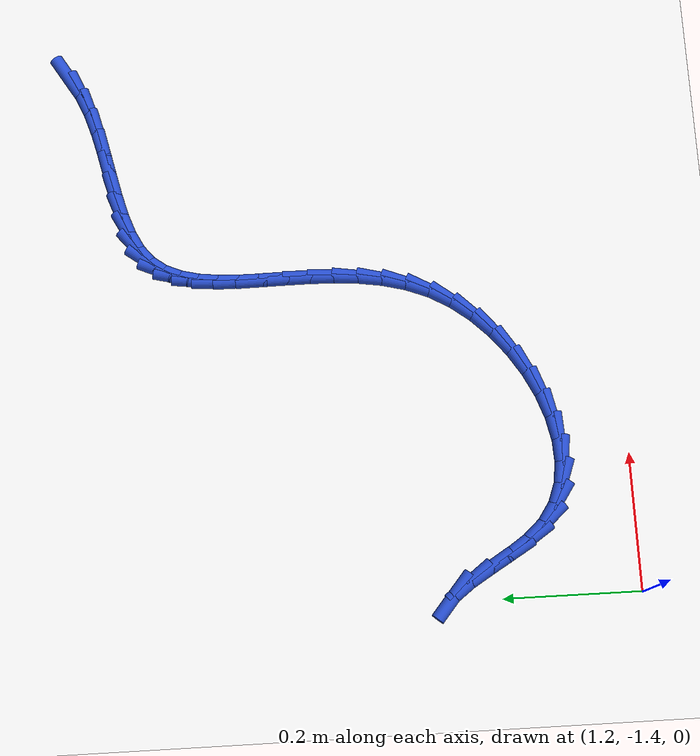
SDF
<sdf version="1.6">
 <world name="default">
  <model name="ground_plane">
   <static>1</static>
   <link name="link">
    <collision name="collision">
     <geometry><plane><normal>0 0 1</normal><size>100 100</size></plane></geometry>
     <surface><friction><ode><mu>100</mu><mu2>50</mu2></ode></friction></surface>
    </collision>
    <visual name="visual">
     <cast_shadows>0</cast_shadows>
     <geometry><plane><normal>0 0 1</normal><size>100 100</size></plane></geometry>
     <material>
      <script><uri>file://media/materials/scripts/gazebo.material</uri><name>Gazebo/WhiteGlow</name></script>
     </material>
    </visual>
   </link>
  </model>
  <model name="line">
   <link name="link_139">
    <pose>2.0204801370603924 -0.6027945578658397 0.01 0 1.57 0.5506249792287402</pose>
    <collision name="collision">
     <geometry><cylinder><radius>0.01</radius><length>0.08</length></cylinder></geometry>
    </collision>
    <visual name="visual">
     <material>
      <script><name>Gazebo/Blue</name><uri>file://media/materials/scripts/gazebo.material</uri></script>
     </material>
     <geometry><cylinder><radius>0.01</radius><length>0.08</length></cylinder></geometry>
    </visual>
   </link>
   <link name="link_140">
    <pose>1.9933408639157826 -0.6194571339336502 0.01 0 1.57 0.4077835670986405</pose>
    <collision name="collision">
     <geometry><cylinder><radius>0.01</radius><length>0.08</length></cylinder></geometry>
    </collision>
    <visual name="visual">
     <material>
      <script><name>Gazebo/Blue</name><uri>file://media/materials/scripts/gazebo.material</uri></script>
     </material>
     <geometry><cylinder><radius>0.01</radius><length>0.08</length></cylinder></geometry>
    </visual>
   </link>
   <link name="link_141">
    <pose>1.9628852519287945 -0.6326139159719442 0.01 0 1.57 0.31090474929550577</pose>
    <collision name="collision">
     <geometry><cylinder><radius>0.01</radius><length>0.08</length></cylinder></geometry>
    </collision>
    <visual name="visual">
     <material>
      <script><name>Gazebo/Blue</name><uri>file://media/materials/scripts/gazebo.material</uri></script>
     </material>
     <geometry><cylinder><radius>0.01</radius><length>0.08</length></cylinder></geometry>
    </visual>
   </link>
   <link name="link_142">
    <pose>1.9301421705893012 -0.643135099022754 0.01 0 1.57 0.2520344838059084</pose>
    <collision name="collision">
     <geometry><cylinder><radius>0.01</radius><length>0.08</length></cylinder></geometry>
    </collision>
    <visual name="visual">
     <material>
      <script><name>Gazebo/Blue</name><uri>file://media/materials/scripts/gazebo.material</uri></script>
     </material>
     <geometry><cylinder><radius>0.01</radius><length>0.08</length></cylinder></geometry>
    </visual>
   </link>
   <link name="link_143">
    <pose>1.8961404893871774 -0.6518908781281112 0.01 0 1.57 0.22571725895517175</pose>
    <collision name="collision">
     <geometry><cylinder><radius>0.01</radius><length>0.08</length></cylinder></geometry>
    </collision>
    <visual name="visual">
     <material>
      <script><name>Gazebo/Blue</name><uri>file://media/materials/scripts/gazebo.material</uri></script>
     </material>
     <geometry><cylinder><radius>0.01</radius><length>0.08</length></cylinder></geometry>
    </visual>
   </link>
   <link name="link_144">
    <pose>1.861909077812298 -0.6597514483300478 0.01 0 1.57 0.2302158299332476</pose>
    <collision name="collision">
     <geometry><cylinder><radius>0.01</radius><length>0.08</length></cylinder></geometry>
    </collision>
    <visual name="visual">
     <material>
      <script><name>Gazebo/Blue</name><uri>file://media/materials/scripts/gazebo.material</uri></script>
     </material>
     <geometry><cylinder><radius>0.01</radius><length>0.08</length></cylinder></geometry>
    </visual>
   </link>
   <link name="link_145">
    <pose>1.8284768053545357 -0.6675870046705954 0.01 0 1.57 0.2680592209914798</pose>
    <collision name="collision">
     <geometry><cylinder><radius>0.01</radius><length>0.08</length></cylinder></geometry>
    </collision>
    <visual name="visual">
     <material>
      <script><name>Gazebo/Blue</name><uri>file://media/materials/scripts/gazebo.material</uri></script>
     </material>
     <geometry><cylinder><radius>0.01</radius><length>0.08</length></cylinder></geometry>
    </visual>
   </link>
   <link name="link_146">
    <pose>1.7968725415037654 -0.6762677421917854 0.01 0 1.57 0.3470038680184652</pose>
    <collision name="collision">
     <geometry><cylinder><radius>0.01</radius><length>0.08</length></cylinder></geometry>
    </collision>
    <visual name="visual">
     <material>
      <script><name>Gazebo/Blue</name><uri>file://media/materials/scripts/gazebo.material</uri></script>
     </material>
     <geometry><cylinder><radius>0.01</radius><length>0.08</length></cylinder></geometry>
    </visual>
   </link>
   <link name="link_147">
    <pose>1.7681251557498618 -0.6866638559356508 0.01 0 1.57 0.4812158918958892</pose>
    <collision name="collision">
     <geometry><cylinder><radius>0.01</radius><length>0.08</length></cylinder></geometry>
    </collision>
    <visual name="visual">
     <material>
      <script><name>Gazebo/Blue</name><uri>file://media/materials/scripts/gazebo.material</uri></script>
     </material>
     <geometry><cylinder><radius>0.01</radius><length>0.08</length></cylinder></geometry>
    </visual>
   </link>
   <link name="link_148">
    <pose>1.7432635175826983 -0.6996455409442218 0.01 0 1.57 0.6887281016527006</pose>
    <collision name="collision">
     <geometry><cylinder><radius>0.01</radius><length>0.08</length></cylinder></geometry>
    </collision>
    <visual name="visual">
     <material>
      <script><name>Gazebo/Blue</name><uri>file://media/materials/scripts/gazebo.material</uri></script>
     </material>
     <geometry><cylinder><radius>0.01</radius><length>0.08</length></cylinder></geometry>
    </visual>
   </link>
   <link name="link_149">
    <pose>1.723305361294164 -0.7160750963336787 0.01 0 1.57 0.9427282363076843</pose>
    <collision name="collision">
     <geometry><cylinder><radius>0.01</radius><length>0.08</length></cylinder></geometry>
    </collision>
    <visual name="visual">
     <material>
      <script><name>Gazebo/Blue</name><uri>file://media/materials/scripts/gazebo.material</uri></script>
     </material>
     <geometry><cylinder><radius>0.01</radius><length>0.08</length></cylinder></geometry>
    </visual>
   </link>
   <link name="link_150">
    <pose>1.7085928610588677 -0.736335784152218 0.01 0 1.57 1.1656803235499935</pose>
    <collision name="collision">
     <geometry><cylinder><radius>0.01</radius><length>0.08</length></cylinder></geometry>
    </collision>
    <visual name="visual">
     <material>
      <script><name>Gazebo/Blue</name><uri>file://media/materials/scripts/gazebo.material</uri></script>
     </material>
     <geometry><cylinder><radius>0.01</radius><length>0.08</length></cylinder></geometry>
    </visual>
   </link>
   <link name="link_151">
    <pose>1.6984167675291186 -0.7600653060923415 0.01 0 1.57 1.334731851967735</pose>
    <collision name="collision">
     <geometry><cylinder><radius>0.01</radius><length>0.08</length></cylinder></geometry>
    </collision>
    <visual name="visual">
     <material>
      <script><name>Gazebo/Blue</name><uri>file://media/materials/scripts/gazebo.material</uri></script>
     </material>
     <geometry><cylinder><radius>0.01</radius><length>0.08</length></cylinder></geometry>
    </visual>
   </link>
   <link name="link_152">
    <pose>1.691976881249246 -0.7868368714765234 0.01 0 1.57 1.4521235813278817</pose>
    <collision name="collision">
     <geometry><cylinder><radius>0.01</radius><length>0.08</length></cylinder></geometry>
    </collision>
    <visual name="visual">
     <material>
      <script><name>Gazebo/Blue</name><uri>file://media/materials/scripts/gazebo.material</uri></script>
     </material>
     <geometry><cylinder><radius>0.01</radius><length>0.08</length></cylinder></geometry>
    </visual>
   </link>
   <link name="link_153">
    <pose>1.688473002763579 -0.8162236896272376 0.01 0 1.57 1.527496155603274</pose>
    <collision name="collision">
     <geometry><cylinder><radius>0.01</radius><length>0.08</length></cylinder></geometry>
    </collision>
    <visual name="visual">
     <material>
      <script><name>Gazebo/Blue</name><uri>file://media/materials/scripts/gazebo.material</uri></script>
     </material>
     <geometry><cylinder><radius>0.01</radius><length>0.08</length></cylinder></geometry>
    </visual>
   </link>
   <link name="link_154">
    <pose>1.687104932616447 -0.8477989698669588 0.01 0 1.57 1.5698225948727833</pose>
    <collision name="collision">
     <geometry><cylinder><radius>0.01</radius><length>0.08</length></cylinder></geometry>
    </collision>
    <visual name="visual">
     <material>
      <script><name>Gazebo/Blue</name><uri>file://media/materials/scripts/gazebo.material</uri></script>
     </material>
     <geometry><cylinder><radius>0.01</radius><length>0.08</length></cylinder></geometry>
    </visual>
   </link>
   <link name="link_155">
    <pose>1.6870724713521787 -0.8811359215181616 0.01 0 1.57 -1.556291385592711</pose>
    <collision name="collision">
     <geometry><cylinder><radius>0.01</radius><length>0.08</length></cylinder></geometry>
    </collision>
    <visual name="visual">
     <material>
      <script><name>Gazebo/Blue</name><uri>file://media/materials/scripts/gazebo.material</uri></script>
     </material>
     <geometry><cylinder><radius>0.01</radius><length>0.08</length></cylinder></geometry>
    </visual>
   </link>
   <link name="link_156">
    <pose>1.6875754195151034 -0.9158077539033183 0.01 0 1.57 -1.5641028164847528</pose>
    <collision name="collision">
     <geometry><cylinder><radius>0.01</radius><length>0.08</length></cylinder></geometry>
    </collision>
    <visual name="visual">
     <material>
      <script><name>Gazebo/Blue</name><uri>file://media/materials/scripts/gazebo.material</uri></script>
     </material>
     <geometry><cylinder><radius>0.01</radius><length>0.08</length></cylinder></geometry>
    </visual>
   </link>
   <link name="link_157">
    <pose>1.6878135776495502 -0.951387676344904 0.01 0 1.57 1.5478717984447465</pose>
    <collision name="collision">
     <geometry><cylinder><radius>0.01</radius><length>0.08</length></cylinder></geometry>
    </collision>
    <visual name="visual">
     <material>
      <script><name>Gazebo/Blue</name><uri>file://media/materials/scripts/gazebo.material</uri></script>
     </material>
     <geometry><cylinder><radius>0.01</radius><length>0.08</length></cylinder></geometry>
    </visual>
   </link>
   <link name="link_158">
    <pose>1.6869867462998482 -0.9874488981653933 0.01 0 1.57 1.496395195622433</pose>
    <collision name="collision">
     <geometry><cylinder><radius>0.01</radius><length>0.08</length></cylinder></geometry>
    </collision>
    <visual name="visual">
     <material>
      <script><name>Gazebo/Blue</name><uri>file://media/materials/scripts/gazebo.material</uri></script>
     </material>
     <geometry><cylinder><radius>0.01</radius><length>0.08</length></cylinder></geometry>
    </visual>
   </link>
   <link name="link_159">
    <pose>1.6842947260103271 -1.02356462868726 0.01 0 1.57 1.4220187985385835</pose>
    <collision name="collision">
     <geometry><cylinder><radius>0.01</radius><length>0.08</length></cylinder></geometry>
    </collision>
    <visual name="visual">
     <material>
      <script><name>Gazebo/Blue</name><uri>file://media/materials/scripts/gazebo.material</uri></script>
     </material>
     <geometry><cylinder><radius>0.01</radius><length>0.08</length></cylinder></geometry>
    </visual>
   </link>
   <link name="link_160">
    <pose>1.6789373173253157 -1.059308077232978 0.01 0 1.57 1.323478441267245</pose>
    <collision name="collision">
     <geometry><cylinder><radius>0.01</radius><length>0.08</length></cylinder></geometry>
    </collision>
    <visual name="visual">
     <material>
      <script><name>Gazebo/Blue</name><uri>file://media/materials/scripts/gazebo.material</uri></script>
     </material>
     <geometry><cylinder><radius>0.01</radius><length>0.08</length></cylinder></geometry>
    </visual>
   </link>
   <link name="link_161">
    <pose>1.6701143207891425 -1.0942524531250217 0.01 0 1.57 1.2005227114284338</pose>
    <collision name="collision">
     <geometry><cylinder><radius>0.01</radius><length>0.08</length></cylinder></geometry>
    </collision>
    <visual name="visual">
     <material>
      <script><name>Gazebo/Blue</name><uri>file://media/materials/scripts/gazebo.material</uri></script>
     </material>
     <geometry><cylinder><radius>0.01</radius><length>0.08</length></cylinder></geometry>
    </visual>
   </link>
   <link name="link_162">
    <pose>1.6570255369461369 -1.1279709656858659 0.01 0 1.57 1.0575467888120178</pose>
    <collision name="collision">
     <geometry><cylinder><radius>0.01</radius><length>0.08</length></cylinder></geometry>
    </collision>
    <visual name="visual">
     <material>
      <script><name>Gazebo/Blue</name><uri>file://media/materials/scripts/gazebo.material</uri></script>
     </material>
     <geometry><cylinder><radius>0.01</radius><length>0.08</length></cylinder></geometry>
    </visual>
   </link>
   <link name="link_163">
    <pose>1.6389537400628382 -1.160034036125063 0.01 0 1.57 0.9192393414856682</pose>
    <collision name="collision">
     <geometry><cylinder><radius>0.01</radius><length>0.08</length></cylinder></geometry>
    </collision>
    <visual name="visual">
     <material>
      <script><name>Gazebo/Blue</name><uri>file://media/materials/scripts/gazebo.material</uri></script>
     </material>
     <geometry><cylinder><radius>0.01</radius><length>0.08</length></cylinder></geometry>
    </visual>
   </link>
   <link name="link_164">
    <pose>1.6161144620849357 -1.1899807427924374 0.01 0 1.57 0.7954705822676417</pose>
    <collision name="collision">
     <geometry><cylinder><radius>0.01</radius><length>0.08</length></cylinder></geometry>
    </collision>
    <visual name="visual">
     <material>
      <script><name>Gazebo/Blue</name><uri>file://media/materials/scripts/gazebo.material</uri></script>
     </material>
     <geometry><cylinder><radius>0.01</radius><length>0.08</length></cylinder></geometry>
    </visual>
   </link>
   <link name="link_165">
    <pose>1.5893102451115273 -1.2173304391110598 0.01 0 1.57 0.6809333635459103</pose>
    <collision name="collision">
     <geometry><cylinder><radius>0.01</radius><length>0.08</length></cylinder></geometry>
    </collision>
    <visual name="visual">
     <material>
      <script><name>Gazebo/Blue</name><uri>file://media/materials/scripts/gazebo.material</uri></script>
     </material>
     <geometry><cylinder><radius>0.01</radius><length>0.08</length></cylinder></geometry>
    </visual>
   </link>
   <link name="link_166">
    <pose>1.5593527721094402 -1.2416021713492693 0.01 0 1.57 0.5702225250688776</pose>
    <collision name="collision">
     <geometry><cylinder><radius>0.01</radius><length>0.08</length></cylinder></geometry>
    </collision>
    <visual name="visual">
     <material>
      <script><name>Gazebo/Blue</name><uri>file://media/materials/scripts/gazebo.material</uri></script>
     </material>
     <geometry><cylinder><radius>0.01</radius><length>0.08</length></cylinder></geometry>
    </visual>
   </link>
   <link name="link_167">
    <pose>1.5270537260455024 -1.2623149857754048 0.01 0 1.57 0.45791963032442634</pose>
    <collision name="collision">
     <geometry><cylinder><radius>0.01</radius><length>0.08</length></cylinder></geometry>
    </collision>
    <visual name="visual">
     <material>
      <script><name>Gazebo/Blue</name><uri>file://media/materials/scripts/gazebo.material</uri></script>
     </material>
     <geometry><cylinder><radius>0.01</radius><length>0.08</length></cylinder></geometry>
    </visual>
   </link>
   <link name="link_168">
    <pose>1.4932247898865407 -1.2789879286578056 0.01 0 1.57 0.3382371082156065</pose>
    <collision name="collision">
     <geometry><cylinder><radius>0.01</radius><length>0.08</length></cylinder></geometry>
    </collision>
    <visual name="visual">
     <material>
      <script><name>Gazebo/Blue</name><uri>file://media/materials/scripts/gazebo.material</uri></script>
     </material>
     <geometry><cylinder><radius>0.01</radius><length>0.08</length></cylinder></geometry>
    </visual>
   </link>
   <link name="link_169">
    <pose>1.4586776465993825 -1.2911400462648102 0.01 0 1.57 0.2046300514641792</pose>
    <collision name="collision">
     <geometry><cylinder><radius>0.01</radius><length>0.08</length></cylinder></geometry>
    </collision>
    <visual name="visual">
     <material>
      <script><name>Gazebo/Blue</name><uri>file://media/materials/scripts/gazebo.material</uri></script>
     </material>
     <geometry><cylinder><radius>0.01</radius><length>0.08</length></cylinder></geometry>
    </visual>
   </link>
   <link name="link_170">
    <pose>1.4242239791508533 -1.2982903848647576 0.01 0 1.57 0.04966642369909856</pose>
    <collision name="collision">
     <geometry><cylinder><radius>0.01</radius><length>0.08</length></cylinder></geometry>
    </collision>
    <visual name="visual">
     <material>
      <script><name>Gazebo/Blue</name><uri>file://media/materials/scripts/gazebo.material</uri></script>
     </material>
     <geometry><cylinder><radius>0.01</radius><length>0.08</length></cylinder></geometry>
    </visual>
   </link>
   <link name="link_171">
    <pose>1.3906754705077833 -1.2999579907259873 0.01 0 1.57 -0.1341518764235065</pose>
    <collision name="collision">
     <geometry><cylinder><radius>0.01</radius><length>0.08</length></cylinder></geometry>
    </collision>
    <visual name="visual">
     <material>
      <script><name>Gazebo/Blue</name><uri>file://media/materials/scripts/gazebo.material</uri></script>
     </material>
     <geometry><cylinder><radius>0.01</radius><length>0.08</length></cylinder></geometry>
    </visual>
   </link>
   <link name="link_172">
    <pose>1.358843803636998 -1.2956619101168376 0.01 0 1.57 -0.3513315425656951</pose>
    <collision name="collision">
     <geometry><cylinder><radius>0.01</radius><length>0.08</length></cylinder></geometry>
    </collision>
    <visual name="visual">
     <material>
      <script><name>Gazebo/Blue</name><uri>file://media/materials/scripts/gazebo.material</uri></script>
     </material>
     <geometry><cylinder><radius>0.01</radius><length>0.08</length></cylinder></geometry>
    </visual>
   </link>
   <link name="link_173">
    <pose>1.329540661505325 -1.284921189305648 0.01 0 1.57 -0.5974748276260154</pose>
    <collision name="collision">
     <geometry><cylinder><radius>0.01</radius><length>0.08</length></cylinder></geometry>
    </collision>
    <visual name="visual">
     <material>
      <script><name>Gazebo/Blue</name><uri>file://media/materials/scripts/gazebo.material</uri></script>
     </material>
     <geometry><cylinder><radius>0.01</radius><length>0.08</length></cylinder></geometry>
    </visual>
   </link>
   <link name="link_174">
    <pose>1.3035776420320377 -1.26725501277146 0.01 0 1.57 -0.8321088650686982</pose>
    <collision name="collision">
     <geometry><cylinder><radius>0.01</radius><length>0.08</length></cylinder></geometry>
    </collision>
    <visual name="visual">
     <material>
      <script><name>Gazebo/Blue</name><uri>file://media/materials/scripts/gazebo.material</uri></script>
     </material>
     <geometry><cylinder><radius>0.01</radius><length>0.08</length></cylinder></geometry>
    </visual>
   </link>
   <link name="link_175">
    <pose>1.2813543123700615 -1.242852155823372 0.01 0 1.57 -0.9756823905581404</pose>
    <collision name="collision">
     <geometry><cylinder><radius>0.01</radius><length>0.08</length></cylinder></geometry>
    </collision>
    <visual name="visual">
     <material>
      <script><name>Gazebo/Blue</name><uri>file://media/materials/scripts/gazebo.material</uri></script>
     </material>
     <geometry><cylinder><radius>0.01</radius><length>0.08</length></cylinder></geometry>
    </visual>
   </link>
   <link name="link_176">
    <pose>1.2619040600107991 -1.2141215711171183 0.01 0 1.57 -1.0349515973693404</pose>
    <collision name="collision">
     <geometry><cylinder><radius>0.01</radius><length>0.08</length></cylinder></geometry>
    </collision>
    <visual name="visual">
     <material>
      <script><name>Gazebo/Blue</name><uri>file://media/materials/scripts/gazebo.material</uri></script>
     </material>
     <geometry><cylinder><radius>0.01</radius><length>0.08</length></cylinder></geometry>
    </visual>
   </link>
   <link name="link_177">
    <pose>1.2439774913023238 -1.1839317586916618 0.01 0 1.57 -1.020625140579391</pose>
    <collision name="collision">
     <geometry><cylinder><radius>0.01</radius><length>0.08</length></cylinder></geometry>
    </collision>
    <visual name="visual">
     <material>
      <script><name>Gazebo/Blue</name><uri>file://media/materials/scripts/gazebo.material</uri></script>
     </material>
     <geometry><cylinder><radius>0.01</radius><length>0.08</length></cylinder></geometry>
    </visual>
   </link>
   <link name="link_178">
    <pose>1.2263252125927109 -1.1551512185859685 0.01 0 1.57 -0.9207893297231562</pose>
    <collision name="collision">
     <geometry><cylinder><radius>0.01</radius><length>0.08</length></cylinder></geometry>
    </collision>
    <visual name="visual">
     <material>
      <script><name>Gazebo/Blue</name><uri>file://media/materials/scripts/gazebo.material</uri></script>
     </material>
     <geometry><cylinder><radius>0.01</radius><length>0.08</length></cylinder></geometry>
    </visual>
   </link>
   <link name="link_179">
    <pose>1.207697830230033 -1.130648450839003 0.01 0 1.57 -0.6941699431192586</pose>
    <collision name="collision">
     <geometry><cylinder><radius>0.01</radius><length>0.08</length></cylinder></geometry>
    </collision>
    <visual name="visual">
     <material>
      <script><name>Gazebo/Blue</name><uri>file://media/materials/scripts/gazebo.material</uri></script>
     </material>
     <geometry><cylinder><radius>0.01</radius><length>0.08</length></cylinder></geometry>
    </visual>
   </link>
  </model>
 </world>
</sdf>
